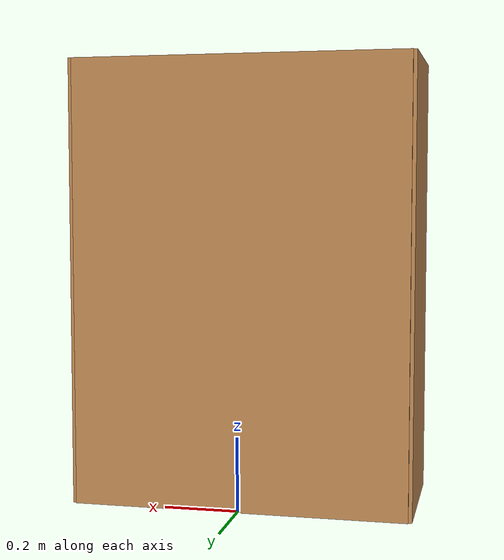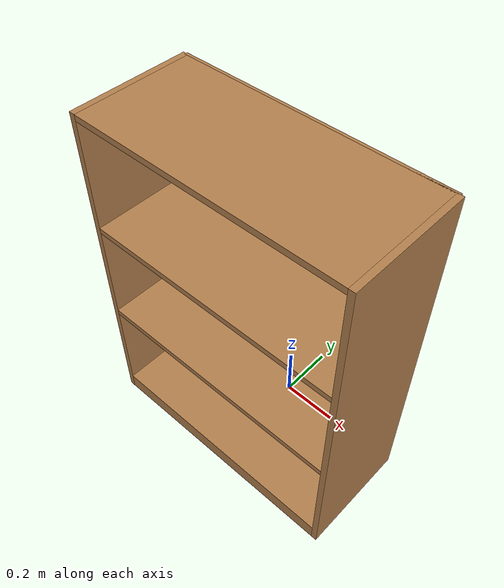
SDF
<sdf version="1.5">
  <model name="Bookshelf">
    <static>true</static>
    <link name="link">
      <inertial>
        <mass>1.0</mass>
      </inertial>
      <collision name="back">
        <pose>0 0.005 0.6 0 0 0</pose>
        <geometry>
          <box>
            <size>0.9 0.01 1.2</size>
          </box>
        </geometry>
      </collision>
      <visual name="visual1">
        <pose>0 0.005 0.6 0 0 0</pose>
        <geometry>
          <box>
            <size>0.9 0.01 1.2</size>
          </box>
        </geometry>
        <material>
          <diffuse>1.0 1.0 1.0</diffuse>
          <script>
            <uri>file://media/materials/scripts/gazebo.material</uri>
            <name>Gazebo/Wood</name>
          </script>
          <!-- PBR for Ignition, material scripts for gazebo classic-->
          <pbr>
            <metal>
              <albedo_map>model://Bookshelf/bookshelf_diffuse.jpg</albedo_map>
            </metal>
          </pbr>
        </material>
      </visual>
      <collision name="left_side">
        <pose>0.45 -0.195 0.6 0 0 0</pose>
        <geometry>
          <box>
            <size>0.02 0.4 1.2</size>
          </box>
        </geometry>
      </collision>
      <visual name="visual2">
        <pose>0.45 -0.195 0.6 0 0 0</pose>
        <geometry>
          <box>
            <size>0.02 0.4 1.2</size>
          </box>
        </geometry>
        <material>
          <diffuse>1.0 1.0 1.0</diffuse>
          <script>
            <uri>file://media/materials/scripts/gazebo.material</uri>
            <name>Gazebo/Wood</name>
          </script>
          <!-- PBR for Ignition, material scripts for gazebo classic-->
          <pbr>
            <metal>
              <albedo_map>model://Bookshelf/bookshelf_diffuse.jpg</albedo_map>
            </metal>
          </pbr>
        </material>
      </visual>
      <collision name="right_side">
        <pose>-0.45 -0.195 0.6 0 0 0</pose>
        <geometry>
          <box>
            <size>0.02 0.4 1.2</size>
          </box>
        </geometry>
      </collision>
      <visual name="visual3">
        <pose>-0.45 -0.195 0.6 0 0 0</pose>
        <geometry>
          <box>
            <size>0.02 0.4 1.2</size>
          </box>
        </geometry>
        <material>
          <diffuse>1.0 1.0 1.0</diffuse>
          <script>
            <uri>file://media/materials/scripts/gazebo.material</uri>
            <name>Gazebo/Wood</name>
          </script>
          <!-- PBR for Ignition, material scripts for gazebo classic-->
          <pbr>
            <metal>
              <albedo_map>model://Bookshelf/bookshelf_diffuse.jpg</albedo_map>
            </metal>
          </pbr>
        </material>
      </visual>
      <collision name="bottom">
        <pose>0 -0.195 0.03 0 0 0</pose>
        <geometry>
          <box>
            <size>0.88 0.4 0.06</size>
          </box>
        </geometry>
      </collision>
      <visual name="visual4">
        <pose>0 -0.195 0.03 0 0 0</pose>
        <geometry>
          <box>
            <size>0.88 0.4 0.06</size>
          </box>
        </geometry>
        <material>
          <diffuse>1.0 1.0 1.0</diffuse>
          <script>
            <uri>file://media/materials/scripts/gazebo.material</uri>
            <name>Gazebo/Wood</name>
          </script>
          <!-- PBR for Ignition, material scripts for gazebo classic-->
          <pbr>
            <metal>
              <albedo_map>model://Bookshelf/bookshelf_diffuse.jpg</albedo_map>
            </metal>
          </pbr>
        </material>
      </visual>
      <collision name="top">
        <pose>0 -0.195 1.19 0 0 0</pose>
        <geometry>
          <box>
            <size>0.88 0.4 0.02</size>
          </box>
        </geometry>
      </collision>
      <visual name="visual5">
        <pose>0 -0.195 1.19 0 0 0</pose>
        <geometry>
          <box>
            <size>0.88 0.4 0.02</size>
          </box>
        </geometry>
        <material>
          <diffuse>1.0 1.0 1.0</diffuse>
          <script>
            <uri>file://media/materials/scripts/gazebo.material</uri>
            <name>Gazebo/Wood</name>
          </script>
          <!-- PBR for Ignition, material scripts for gazebo classic-->
          <pbr>
            <metal>
              <albedo_map>model://Bookshelf/bookshelf_diffuse.jpg</albedo_map>
            </metal>
          </pbr>
        </material>
      </visual>
      <collision name="low_shelf">
        <pose>0 -0.195 0.43 0 0 0</pose>
        <geometry>
          <box>
            <size>0.88 0.4 0.02</size>
          </box>
        </geometry>
      </collision>
      <visual name="visual6">
        <pose>0 -0.195 0.43 0 0 0</pose>
        <geometry>
          <box>
            <size>0.88 0.4 0.02</size>
          </box>
        </geometry>
        <material>
          <diffuse>1.0 1.0 1.0</diffuse>
          <script>
            <uri>file://media/materials/scripts/gazebo.material</uri>
            <name>Gazebo/Wood</name>
          </script>
          <!-- PBR for Ignition, material scripts for gazebo classic-->
          <pbr>
            <metal>
              <albedo_map>model://Bookshelf/bookshelf_diffuse.jpg</albedo_map>
            </metal>
          </pbr>
        </material>
      </visual>
      <collision name="high_shelf">
        <pose>0 -0.195 0.8 0 0 0</pose>
        <geometry>
          <box>
            <size>0.88 0.4 0.02</size>
          </box>
        </geometry>
      </collision>
      <visual name="visual7">
        <pose>0 -0.195 0.8 0 0 0</pose>
        <geometry>
          <box>
            <size>0.88 0.4 0.02</size>
          </box>
        </geometry>
        <material>
          <diffuse>1.0 1.0 1.0</diffuse>
          <script>
            <uri>file://media/materials/scripts/gazebo.material</uri>
            <name>Gazebo/Wood</name>
          </script>
          <!-- PBR for Ignition, material scripts for gazebo classic-->
          <pbr>
            <metal>
              <albedo_map>model://Bookshelf/bookshelf_diffuse.jpg</albedo_map>
            </metal>
          </pbr>
        </material>
      </visual>
    </link>
  </model>
</sdf>
